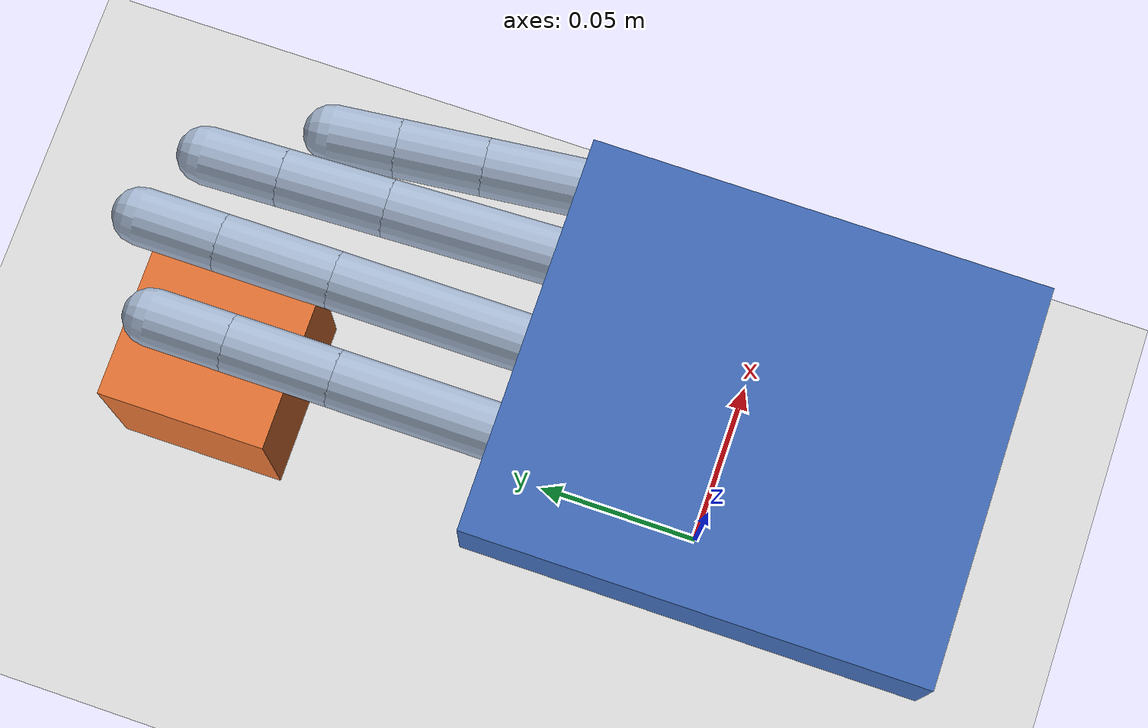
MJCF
<mujoco model="simple_virtual_dexterous_hand_v01">
  <compiler angle="radian" autolimits="true"/>
  <option timestep="0.004" gravity="0 0 -9.81"/>
  <default>
    <joint damping="0.25" armature="0.002"/>
    <geom type="capsule" size="0.007" rgba="0.65 0.72 0.82 1" density="500" contype="1" conaffinity="1"/>
    <position kp="22" kv="1.2"/>
  </default>
  <worldbody>
    <light pos="0 0 1"/>
    <geom name="floor" type="plane" size="0.5 0.5 0.02" rgba="0.88 0.88 0.88 1"/>
    <body name="palm" pos="0 0 0.18">
      <geom type="box" size="0.048 0.055 0.012" rgba="0.25 0.42 0.72 1"/>

      <body name="thumb1" pos="-0.038 -0.035 0" euler="0 0 -0.785">
        <joint name="thumb_mcp" axis="1 0 0" range="-0.1745 0.9599"/>
        <geom fromto="0 0 0 0 0.032 0"/>
        <body name="thumb2" pos="0 0.032 0"><joint name="thumb_pip" axis="1 0 0" range="0 1.309"/><geom fromto="0 0 0 0 0.024 0"/>
          <body name="thumb3" pos="0 0.024 0"><joint name="thumb_dip" axis="1 0 0" range="0 1.1345"/><geom fromto="0 0 0 0 0.018 0"/></body>
        </body>
      </body>

      <body name="index1" pos="-0.022 0.052 0"><joint name="index_mcp" axis="1 0 0" range="0 1.4835"/><geom fromto="0 0 0 0 0.042 0"/>
        <body name="index2" pos="0 0.042 0"><joint name="index_pip" axis="1 0 0" range="0 1.6581"/><geom fromto="0 0 0 0 0.026 0"/>
          <body name="index3" pos="0 0.026 0"><joint name="index_dip" axis="1 0 0" range="0 1.2217"/><geom fromto="0 0 0 0 0.019 0"/></body>
        </body>
      </body>

      <body name="middle1" pos="0 0.055 0"><joint name="middle_mcp" axis="1 0 0" range="0 1.4835"/><geom fromto="0 0 0 0 0.047 0"/>
        <body name="middle2" pos="0 0.047 0"><joint name="middle_pip" axis="1 0 0" range="0 1.6581"/><geom fromto="0 0 0 0 0.028 0"/>
          <body name="middle3" pos="0 0.028 0"><joint name="middle_dip" axis="1 0 0" range="0 1.2217"/><geom fromto="0 0 0 0 0.020 0"/></body>
        </body>
      </body>

      <body name="ring1" pos="0.022 0.052 0" euler="0 0 0.035"><joint name="ring_mcp" axis="1 0 0" range="0 1.4835"/><geom fromto="0 0 0 0 0.044 0"/>
        <body name="ring2" pos="0 0.044 0"><joint name="ring_pip" axis="1 0 0" range="0 1.6581"/><geom fromto="0 0 0 0 0.026 0"/>
          <body name="ring3" pos="0 0.026 0"><joint name="ring_dip" axis="1 0 0" range="0 1.2217"/><geom fromto="0 0 0 0 0.019 0"/></body>
        </body>
      </body>

      <body name="little1" pos="0.041 0.043 0" euler="0 0 0.105"><joint name="little_mcp" axis="1 0 0" range="0 1.5708"/><geom fromto="0 0 0 0 0.035 0"/>
        <body name="little2" pos="0 0.035 0"><joint name="little_pip" axis="1 0 0" range="0 1.6581"/><geom fromto="0 0 0 0 0.021 0"/>
          <body name="little3" pos="0 0.021 0"><joint name="little_dip" axis="1 0 0" range="0 1.2217"/><geom fromto="0 0 0 0 0.016 0"/></body>
        </body>
      </body>
    </body>
    <body name="test_cube" pos="0 0.15 0.035"><freejoint/><geom type="box" size="0.025 0.025 0.025" rgba="0.9 0.45 0.2 1" density="250"/></body>
  </worldbody>
  <actuator>
    <position name="act_thumb_mcp" joint="thumb_mcp" ctrlrange="-0.1745 0.9599"/>
    <position name="act_thumb_pip" joint="thumb_pip" ctrlrange="0 1.309"/>
    <position name="act_thumb_dip" joint="thumb_dip" ctrlrange="0 1.1345"/>
    <position name="act_index_mcp" joint="index_mcp" ctrlrange="0 1.4835"/>
    <position name="act_index_pip" joint="index_pip" ctrlrange="0 1.6581"/>
    <position name="act_index_dip" joint="index_dip" ctrlrange="0 1.2217"/>
    <position name="act_middle_mcp" joint="middle_mcp" ctrlrange="0 1.4835"/>
    <position name="act_middle_pip" joint="middle_pip" ctrlrange="0 1.6581"/>
    <position name="act_middle_dip" joint="middle_dip" ctrlrange="0 1.2217"/>
    <position name="act_ring_mcp" joint="ring_mcp" ctrlrange="0 1.4835"/>
    <position name="act_ring_pip" joint="ring_pip" ctrlrange="0 1.6581"/>
    <position name="act_ring_dip" joint="ring_dip" ctrlrange="0 1.2217"/>
    <position name="act_little_mcp" joint="little_mcp" ctrlrange="0 1.5708"/>
    <position name="act_little_pip" joint="little_pip" ctrlrange="0 1.6581"/>
    <position name="act_little_dip" joint="little_dip" ctrlrange="0 1.2217"/>
  </actuator>
</mujoco>
